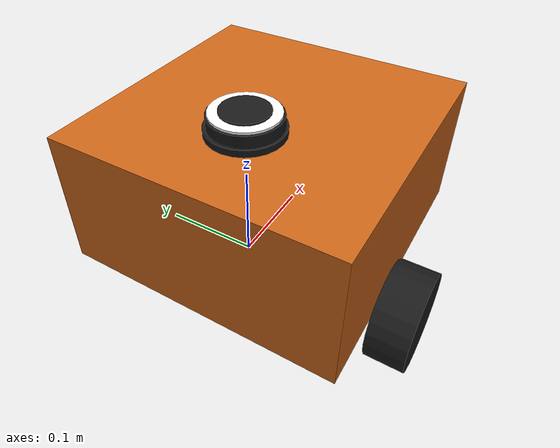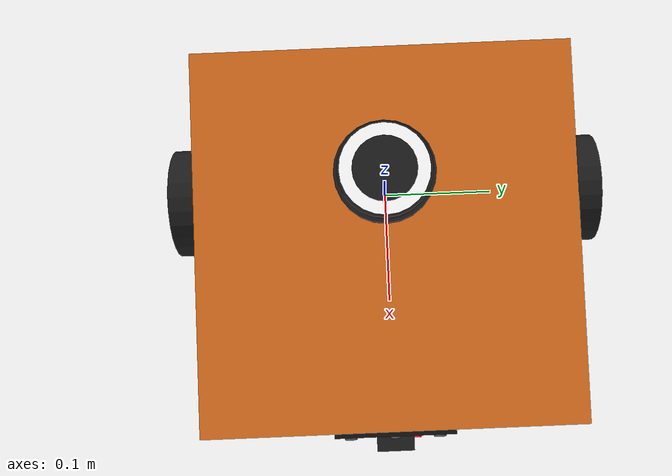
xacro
<?xml version="1.0"?>
<robot xmlns:xacro="http://www.ros.org/wiki/xacro"  name="mob_rob">

    <xacro:arg name="use_ros2_control" default="true"/>

    <xacro:include filename="robot_core.xacro" />
    <!-- Condition to choose between ros2 and gazebo control -->
    <xacro:if value="$(arg use_ros2_control)">
        <xacro:include filename="ros2_control.xacro" />
    </xacro:if>
    <xacro:unless value="$(arg use_ros2_control)">
        <xacro:include filename="gazebo_control.xacro" />
    </xacro:unless>

    <xacro:include filename="lidar.xacro" />
    <xacro:include filename="camera.xacro" />
    <xacro:include filename="depth_camera.xacro" />

</robot>

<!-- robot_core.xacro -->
<robot xmlns:xacro="http://www.ros.org/wiki/xacro">

    <!-- Include inertial macros file -->
    <xacro:include filename="inertial_macros.xacro"/>

    <!-- Define colors -->
    <material name="white">
        <color rgba="1 1 1 1"/>
    </material>

    <material name="orange">
        <color rgba="1 0.3 0.1 1"/>
    </material>

    <material name="blue">
        <color rgba="0.2 0.2 1 1"/>
    </material>

    <material name="black">
        <color rgba="0 0 0 1"/>
    </material>

    <material name="red">
        <color rgba="1 0 0 1"/>
    </material>

    <material name="green">
        <color rgba="0 1 0 1"/>
    </material>

    <material name="wheel_color">
        <color rgba="0.1 0.1 0.1 1"/> <!-- Dark grey -->
    </material>

    <material name="chassis_color">
        <color rgba="0.8 0.4 0.1 1.0"/>  <!-- Darker orange -->
    </material>

    <!-- Initialize the base link -->
    <link name="base_link">

    </link>

    <!-- Base footprint joint and link -->
    <joint name="base_footprint_joint" type="fixed">
        <parent link="base_link"/>
        <child link="base_footprint"/>
        <origin xyz="0 0 0" rpy="0 0 0"/>
    </joint>

    <link name="base_footprint"></link>

    <!-- Chassis joint -->
    <joint name="chassis_joint" type="fixed">
        <parent link="base_link"/>
        <child link="chassis"/>
        <origin xyz="-0.1 0 0"/> <!-- Origin behind the base link (back bottom center)-->
    </joint>

    <!-- Chassis link -->
    <link name="chassis">
        <visual>
            <!-- Visual box origin is 0.15m forward and 0.075m up -->
            <origin xyz="0.15 0 0.075"/>
            <geometry>
                <box size="0.3 0.3 0.15"/> <!-- Size of the robot in meters -->
            </geometry>
            <material name="chassis_color"/>

        </visual>

        <collision>
            <!-- Visual box origin is 0.15m forward and 0.075m up -->
            <origin xyz="0.15 0 0.075"/>
            <geometry>
                <box size="0.3 0.3 0.15"/> <!-- Size of the robot in meters -->
            </geometry>
        </collision>

        <!-- Inertial box for chassis -->
        <xacro:inertial_box mass="0.3" x="0.3" y="0.3" z="0.15">
            <!-- Same as visual origin -->
            <origin xyz="0.15 0 0.075" rpy="0 0 0"/>
        </xacro:inertial_box>
    </link>
    <!-- Assign color in Gazebo -->
    <gazebo reference="chassis">
        <visual>
            <material>
                <ambient>0.5 0.2 0.05 1.0</ambient>
                <diffuse>0.7 0.3 0.1 1.0</diffuse>
                <specular>0.8 0.8 0.8 1.0</specular>
                <emissive>0.0 0.0 0.0 0.0</emissive>
            </material>
        </visual>
    </gazebo>

    <!-- Left wheel joint -->

    <joint name="left_wheel_joint" type="continuous">
        <parent link="base_link"/>
        <child link="left_wheel"/>
        <origin xyz="0 0.175 0" rpy="-${pi/2} 0 0"/>
        <axis xyz="0 0 1"/>
    </joint>

    <!-- Left wheel link -->

    <link name="left_wheel">
        <visual>
            <geometry>
                <cylinder radius="0.05" length="0.04"/>
            </geometry>
            <material name="wheel_color"/>
        </visual>

        <collision>
            <geometry>
                <sphere radius="0.05"/>
            </geometry>
        </collision>
        <!-- Inertial cylinder for wheels -->
        <xacro:inertial_cylinder mass="0.1" radius="0.05" length="0.04">
            <origin xyz="0 0 0" rpy="0 0 0"/>
        </xacro:inertial_cylinder>
    </link>
    <!-- Assign color in Gazebo -->
    <gazebo reference="left_wheel">
        <material>Gazebo/FlatBlack</material>
    </gazebo>

    <!-- Right wheel joint -->

    <joint name="right_wheel_joint" type="continuous">
        <parent link="base_link"/>
        <child link="right_wheel"/>
        <origin xyz="0 -0.175 0" rpy="${pi/2} 0 0"/>
        <axis xyz="0 0 -1"/>
    </joint>

    <!-- Right wheel link -->

    <link name="right_wheel">
        <visual>
            <geometry>
                <cylinder radius="0.05" length="0.04"/>
            </geometry>
            <material name="wheel_color"/>
        </visual>

        <collision>
            <geometry>
                <sphere radius="0.05"/>
            </geometry>
        </collision>

        <xacro:inertial_cylinder mass="0.1" radius="0.05" length="0.04">
            <origin xyz="0 0 0" rpy="0 0 0"/>
        </xacro:inertial_cylinder>
    </link>
    <!-- Assign color in Gazebo -->
    <gazebo reference="right_wheel">
        <material>Gazebo/FlatBlack</material>
    </gazebo>

    <!-- Caster wheel joint -->

    <joint name="caster_wheel_joint" type="fixed">
        <parent link="chassis"/>
        <child link="caster_wheel"/>
        <origin xyz="0.24 0 0"/>
    </joint>

    <!-- Caster wheel link -->

    <link name="caster_wheel">
        <visual>
            <geometry>
                <sphere radius="0.05"/>
            </geometry>
            <material name="wheel_color"/>
        </visual>
        <collision>
            <geometry>
                <sphere radius="0.05"/>
            </geometry>
        </collision>
        <xacro:inertial_sphere mass="0.1" radius="0.05">
            <origin xyz="0 0 0" rpy="0 0 0"/>
        </xacro:inertial_sphere>
    </link>
    <gazebo reference="caster_wheel">
        <material>Gazebo/DarkGrey</material>
        <mu1>0.001</mu1>
        <mu2>0.001</mu2>
    </gazebo>

</robot>

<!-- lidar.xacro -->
<robot xmlns:xacro="http://www.ros.org/wiki/xacro">

    <!-- Define lidar-specific colors -->
    <material name="lidar_black">
        <color rgba="0.1 0.1 0.1 1"/>
    </material>

    <material name="lidar_white">
        <color rgba="1 1 1 1"/>
    </material>

    <!-- Lidar base mount -->
    <joint name="lidar_base_joint" type="fixed">
        <parent link="chassis"/>
        <child link="lidar_base"/>
        <origin xyz="0.1 0 0.15" rpy="0 0 0"/>
    </joint>

    <link name="lidar_base">
        <visual>
            <geometry>
                <cylinder radius="0.04" length="0.015"/>
            </geometry>
            <material name="lidar_black"/>
        </visual>
        <collision>
            <geometry>
                <cylinder radius="0.04" length="0.015"/>
            </geometry>
        </collision>
        <xacro:inertial_cylinder mass="0.02" radius="0.04" length="0.015">
            <origin xyz="0 0 0" rpy="0 0 0"/>
        </xacro:inertial_cylinder>
    </link>
    <gazebo reference="lidar_base">
        <material>Gazebo/Black</material>
    </gazebo>

    <!-- Main lidar sensor (laser_frame for compatibility) -->
    <joint name="laser_joint" type="fixed">
        <parent link="lidar_base"/>
        <child link="laser_frame"/>
        <origin xyz="0 0 0.0125" rpy="0 0 0"/>
    </joint>

    <link name="laser_frame">
        <visual>
            <geometry>
                <cylinder radius="0.035" length="0.02"/>
            </geometry>
            <material name="lidar_white"/>
        </visual>
        <collision>
            <geometry>
                <cylinder radius="0.035" length="0.02"/>
            </geometry>
        </collision>
        <xacro:inertial_cylinder mass="0.05" radius="0.035" length="0.02">
            <origin xyz="0 0 0" rpy="0 0 0"/>
        </xacro:inertial_cylinder>
    </link>

    <!-- Lidar lens ring (transparent part) -->
    <joint name="lidar_lens_joint" type="fixed">
        <parent link="laser_frame"/>
        <child link="lidar_lens"/>
        <origin xyz="0 0 0" rpy="0 0 0"/>
    </joint>

    <link name="lidar_lens">
        <visual>
            <geometry>
                <cylinder radius="0.037" length="0.015"/>
            </geometry>
            <material name="lidar_black"/>
        </visual>
    </link>
    <gazebo reference="lidar_lens">
        <material>Gazebo/GreyTransparent</material>
    </gazebo>

    <!-- Top detail -->
    <joint name="lidar_top_joint" type="fixed">
        <parent link="laser_frame"/>
        <child link="lidar_top"/>
        <origin xyz="0 0 0.011" rpy="0 0 0"/>
    </joint>

    <link name="lidar_top">
        <visual>
            <geometry>
                <cylinder radius="0.025" length="0.002"/>
            </geometry>
            <material name="lidar_black"/>
        </visual>
    </link>
    <gazebo reference="lidar_top">
        <material>Gazebo/Black</material>
    </gazebo>

    <!-- Gazebo sensor configuration -->
    <gazebo reference="laser_frame">
        <material>Gazebo/DarkGrey</material>
        <sensor name="laser" type="ray">
            <pose> 0 0 0 0 0 0 </pose>
            <visualize>false</visualize>
            <update_rate>10</update_rate>
            <ray>
                <scan>
                    <horizontal>
                        <samples>360</samples>
                        <resolution>1</resolution>
                        <min_angle>-3.14</min_angle>
                        <max_angle>3.14</max_angle>
                    </horizontal>
                </scan>
                <range>
                    <min>0.3</min>
                    <max>12</max>
                </range>
            </ray>

            <plugin name="laser_controller" filename="libgazebo_ros_ray_sensor.so">
                <ros>
                    <argument>~/out:=scan</argument>
                </ros>
                <output_type>sensor_msgs/LaserScan</output_type>
                <frame_name>laser_frame</frame_name>
            </plugin>
        </sensor>
    </gazebo>

</robot>

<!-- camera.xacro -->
<robot xmlns:xacro="http://www.ros.org/wiki/xacro">

    <!-- Define camera colors -->
    <material name="camera_black">
        <color rgba="0.1 0.1 0.1 1"/>
    </material>

    <material name="camera_lens_blue">
        <color rgba="0.2 0.3 0.8 1"/>
    </material>

    <!-- Camera positioned higher and further forward -->
    <joint name="camera_body_joint" type="fixed">
        <parent link="chassis"/>
        <child link="camera_body"/>
        <origin xyz="0.31 0 0.1" rpy="0 0.05 0"/>  <!-- Moved up to 0.12, forward to 0.31, slight downward tilt -->
    </joint>

    <link name="camera_body">
        <visual>
            <geometry>
                <box size="0.02 0.03 0.03"/>
            </geometry>
            <material name="camera_black"/>
        </visual>
        <collision>
            <geometry>
                <box size="0.02 0.03 0.03"/>
            </geometry>
        </collision>
        <xacro:inertial_box mass="0.02" x="0.02" y="0.03" z="0.03">
            <origin xyz="0 0 0" rpy="0 0 0"/>
        </xacro:inertial_box>
    </link>
    <gazebo reference="camera_body">
        <material>Gazebo/Black</material>
    </gazebo>

    <!-- Lens indicator -->
    <joint name="camera_lens_visual_joint" type="fixed">
        <parent link="camera_body"/>
        <child link="camera_lens_visual"/>
        <origin xyz="0.011 0 0" rpy="0 1.5708 0"/>
    </joint>

    <link name="camera_lens_visual">
        <visual>
            <geometry>
                <cylinder radius="0.005" length="0.002"/>
            </geometry>
            <material name="camera_lens_blue"/>
        </visual>
    </link>
    <gazebo reference="camera_lens_visual">
        <material>Gazebo/Blue</material>
    </gazebo>

    <!-- Camera sensor link -->
    <joint name="camera_joint" type="fixed">
        <parent link="camera_body"/>
        <child link="camera_link"/>
        <origin xyz="0.02 0 0" rpy="0 0 0"/>  <!-- Well in front of body -->
    </joint>

    <link name="camera_link"/>

    <!-- Camera optical frame -->
    <joint name="camera_joint_optical" type="fixed">
        <parent link="camera_link"/>
        <child link="camera_link_optical"/>
        <origin xyz="0 0 0" rpy="${-pi/2} 0 ${-pi/2}"/>
    </joint>

    <link name="camera_link_optical"/>

    <!-- Gazebo sensor with adjusted FOV -->
    <gazebo reference="camera_link">
        <sensor name="camera" type="camera">
            <pose>0 0 0 0 0 0</pose>
            <always_on>true</always_on>
            <visualize>true</visualize>  <!-- Enable to see camera frustum -->
            <update_rate>30</update_rate>
            <camera>
                <horizontal_fov>1.396</horizontal_fov>  <!-- Wider FOV ~80 degrees -->
                <image>
                    <format>R8G8B8</format>
                    <width>640</width>
                    <height>480</height>
                </image>
                <clip>
                    <near>0.05</near>  <!-- Increased to avoid seeing nearby objects -->
                    <far>100.0</far>
                </clip>
            </camera>
            <plugin name="camera_controller" filename="libgazebo_ros_camera.so">
                <ros>
                    <namespace>/</namespace>
                    <remapping>image_raw:=camera/image_raw</remapping>
                    <remapping>camera_info:=camera/camera_info</remapping>
                </ros>
                <camera_name>camera</camera_name>
                <frame_name>camera_link_optical</frame_name>
            </plugin>
        </sensor>
    </gazebo>

</robot>

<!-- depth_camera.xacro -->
<robot xmlns:xacro="http://www.ros.org/wiki/xacro">

    <!-- Define depth camera colors -->
    <material name="depth_camera_black">
        <color rgba="0.05 0.05 0.05 1"/>
    </material>

    <material name="depth_camera_dark_grey">
        <color rgba="0.3 0.3 0.3 1"/>
    </material>

    <!-- Depth camera housing -->
    <joint name="depth_camera_housing_joint" type="fixed">
        <parent link="chassis"/>
        <child link="depth_camera_housing"/>
        <origin xyz="0.295 0 0.13" rpy="0 0 0"/>
    </joint>

    <link name="depth_camera_housing">
        <visual>
            <geometry>
                <box size="0.02 0.095 0.02"/>
            </geometry>
            <material name="depth_camera_black"/>
        </visual>
        <collision>
            <geometry>
                <box size="0.02 0.095 0.02"/>
            </geometry>
        </collision>
        <xacro:inertial_box mass="0.03" x="0.02" y="0.095" z="0.02">
            <origin xyz="0 0 0" rpy="0 0 0"/>
        </xacro:inertial_box>
    </link>
    <gazebo reference="depth_camera_housing">
        <material>Gazebo/Black</material>
    </gazebo>

    <!-- Left IR camera -->
    <joint name="depth_left_ir_joint" type="fixed">
        <parent link="depth_camera_housing"/>
        <child link="depth_left_ir"/>
        <origin xyz="0.011 0.035 0" rpy="0 1.5708 0"/>
    </joint>

    <link name="depth_left_ir">
        <visual>
            <geometry>
                <cylinder radius="0.005" length="0.003"/>
            </geometry>
            <material name="depth_camera_dark_grey"/>
        </visual>
    </link>
    <gazebo reference="depth_left_ir">
        <material>Gazebo/DarkGrey</material>
    </gazebo>

    <!-- Right IR camera -->
    <joint name="depth_right_ir_joint" type="fixed">
        <parent link="depth_camera_housing"/>
        <child link="depth_right_ir"/>
        <origin xyz="0.011 -0.035 0" rpy="0 1.5708 0"/>
    </joint>

    <link name="depth_right_ir">
        <visual>
            <geometry>
                <cylinder radius="0.005" length="0.003"/>
            </geometry>
            <material name="depth_camera_dark_grey"/>
        </visual>
    </link>
    <gazebo reference="depth_right_ir">
        <material>Gazebo/DarkGrey</material>
    </gazebo>

    <!-- RGB camera in center -->
    <joint name="depth_rgb_joint" type="fixed">
        <parent link="depth_camera_housing"/>
        <child link="depth_rgb"/>
        <origin xyz="0.011 0 0" rpy="0 1.5708 0"/>
    </joint>

    <link name="depth_rgb">
        <visual>
            <geometry>
                <cylinder radius="0.004" length="0.003"/>
            </geometry>
            <material name="depth_camera_dark_grey"/>
        </visual>
    </link>
    <gazebo reference="depth_rgb">
        <material>Gazebo/DarkGrey</material>
    </gazebo>

    <!-- IR projector (between left camera and RGB) -->
    <joint name="depth_projector_joint" type="fixed">
        <parent link="depth_camera_housing"/>
        <child link="depth_projector"/>
        <origin xyz="0.011 0.0175 0" rpy="0 1.5708 0"/>
    </joint>

    <link name="depth_projector">
        <visual>
            <geometry>
                <cylinder radius="0.003" length="0.003"/>
            </geometry>
            <material name="red"/>
        </visual>
    </link>
    <gazebo reference="depth_projector">
        <material>Gazebo/RedGlow</material>
    </gazebo>

    <!-- Main depth camera link (hidden, for sensor attachment) -->
    <joint name="depth_camera_joint" type="fixed">
        <parent link="depth_camera_housing"/>
        <child link="depth_camera_link"/>
        <origin xyz="0.01 0 0" rpy="0 0 0"/>
    </joint>

    <link name="depth_camera_link">
        <!-- No visual, just for sensor attachment -->
    </link>

    <!-- Depth camera optical frame -->
    <joint name="depth_camera_joint_optical" type="fixed">
        <parent link="depth_camera_link"/>
        <child link="depth_camera_link_optical"/>
        <origin xyz="0 0 0" rpy="${-pi/2} 0 ${-pi/2}"/>
    </joint>

    <link name="depth_camera_link_optical"></link>

    <!-- Gazebo sensor configuration -->
    <gazebo reference="depth_camera_link">
        <sensor name="depth_camera" type="depth">
            <pose> 0 0 0 0 0 0 </pose>
            <visualize>false</visualize>
            <update_rate>10</update_rate>
            <camera>
                <horizontal_fov>1.089</horizontal_fov>
                <image>
                    <format>B8G8R8</format>
                    <width>640</width>
                    <height>480</height>
                </image>
                <clip>
                    <near>0.05</near>
                    <far>8.0</far>
                </clip>
            </camera>
            <plugin name="depth_camera_controller" filename="libgazebo_ros_camera.so">
                <frame_name>depth_camera_link_optical</frame_name>
                <min_depth>0.1</min_depth>
                <max_depth>100.0</max_depth>
            </plugin>
        </sensor>
    </gazebo>

</robot>
